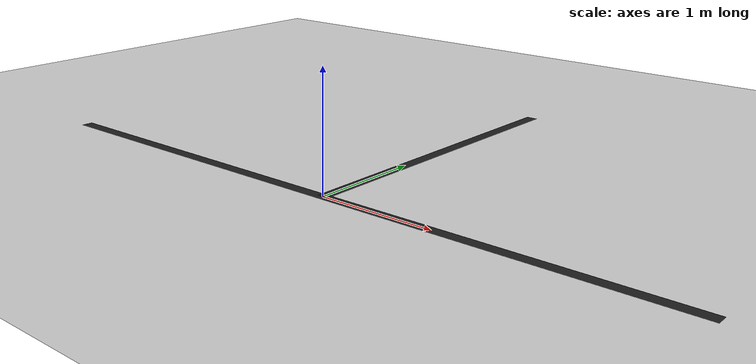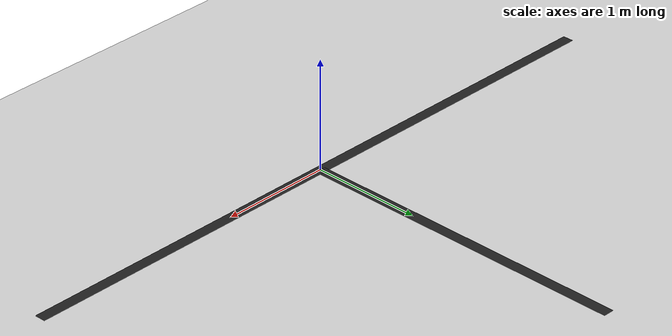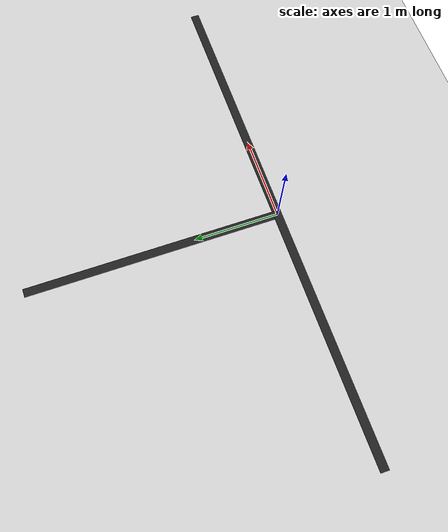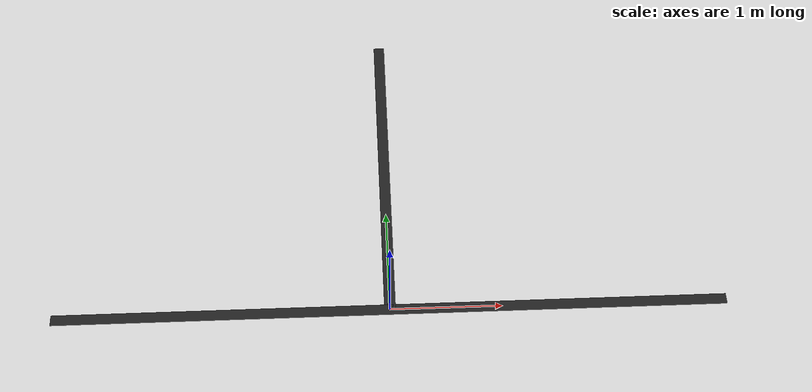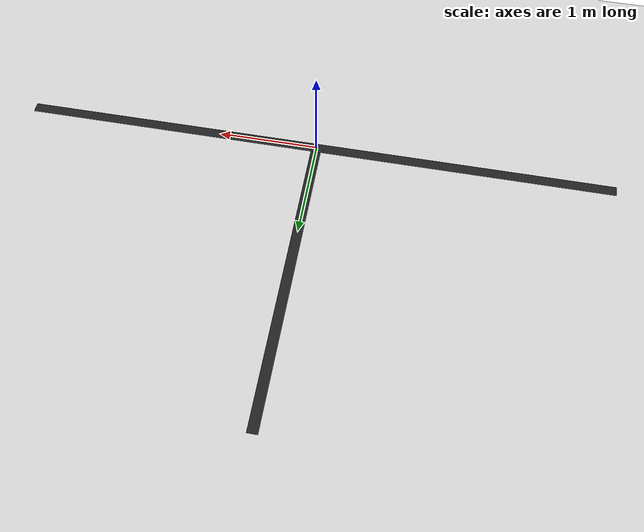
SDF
<?xml version="1.0"?>
<sdf version="1.4">
  <world name="line_track_world">
    <include>
      <uri>model://sun</uri>
    </include>
    <include>
      <uri>model://ground_plane</uri>
    </include>
    <model name="line_track">
      <static>true</static>
      <link name="track_link">
        <visual name="main_line">
          <pose>0 0 0.001 0 0 0</pose>
          <geometry>
            <box>
              <size>6 0.1 0.001</size>
            </box>
          </geometry>
          <material>
            <script>
              <name>Gazebo/Black</name>
            </script>
          </material>
        </visual>
        <visual name="left_branch">
          <pose>0 1.5 0.001 0 0 0</pose>
          <geometry>
            <box>
              <size>0.1 3 0.001</size>
            </box>
          </geometry>
          <material>
            <script>
              <name>Gazebo/Black</name>
            </script>
          </material>
        </visual>
        <collision name="track_collision">
          <pose>0 0 0 0 0 0</pose>
          <geometry>
            <box>
              <size>10 10 0.001</size>
            </box>
          </geometry>
        </collision>
      </link>
    </model>
  </world>
</sdf>
